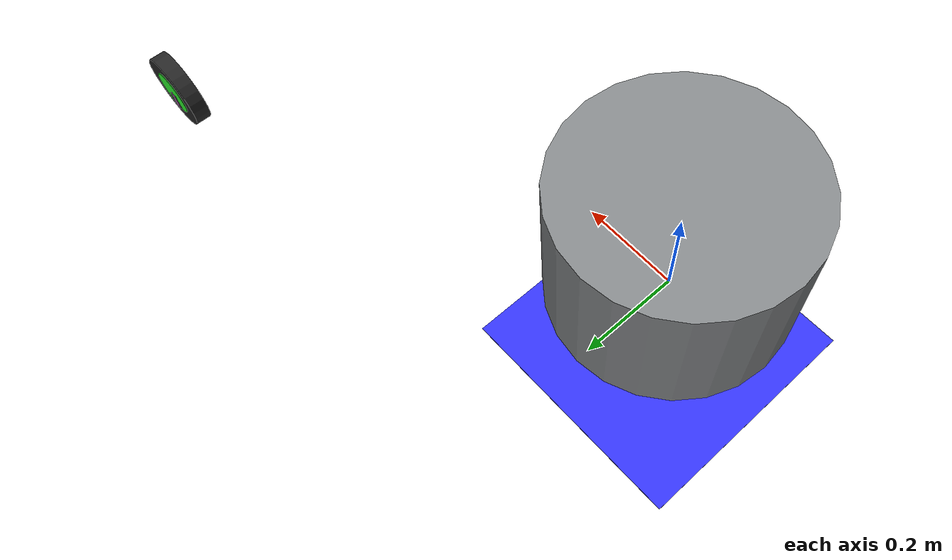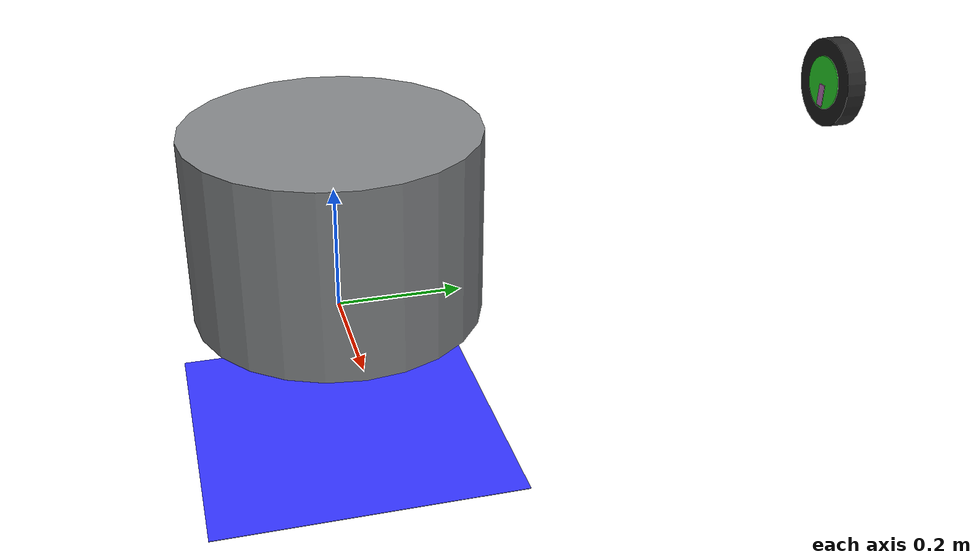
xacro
<?xml version="1.0"?>
<robot xmlns:xacro="http://ros.org/wiki/xacro" name="simple_robot">
  <xacro:property name="radius" value="0.05" />
  <xacro:property name="width" value="0.0254" />
  <xacro:property name="side" value="left" />
  <xacro:property name="axis" value="1" />
  <xacro:property name="pos_x" value="0.5" />
  <xacro:property name="pos_y" value="0.5" />
  <xacro:property name="pos_z" value="0.5" />
  <xacro:property name="mass_kg" value="1.0" />
  <xacro:property name="pi" value="3.14159265359" />

  <!-- base_link-->
  <link name="base_link" />
  <joint name="base_to_chassis" type="fixed">
    <origin xyz="0 0 0" rpy="0 0 0" />
    <child link="chassis" />
    <parent link="base_link" />
  </joint>

  <link name="chassis">
    <collision>
      <geometry>
        <cylinder radius="${0.2286}" length="${0.3}" />
      </geometry>
      <origin rpy="0 0 0" xyz="0 0 ${(0.3/2)}" />
    </collision>
    <visual>
      <geometry>
        <cylinder radius="${0.2286}" length="${0.3}" />
      </geometry>
      <material name="body_aluminum">
        <color rgba="0.516 0.527 0.535 1" />
      </material>
      <origin rpy="0 0 0" xyz="0 0 ${(0.3 / 2)}" />
    </visual>
  </link>

  <!-- Here is the base_footprint -->
  <material name="base_footprint_color">
    <color rgba=".2 .2 1 1"/>
  </material>

  <link name="base_footprint">
    <visual>
      <geometry>
        <box size="0.5 0.5 0.001"/>
      </geometry>
      <pose>0 0 0 0 0 0</pose>
      <material name="base_footprint_color"/>
    </visual>
  </link>

  <joint name="base_footprint_joint" type="fixed">
    <parent link="base_link"/>
    <child link="base_footprint"/>
    <origin xyz="0 0 -0.23" rpy="0 0 0"/>
  </joint>

  <!-- wheel-->
  <link name="${side}_wheel_link">
    <visual name="tire">
      <origin xyz="0 0 0" rpy="0 0 0" />
      <geometry>
        <cylinder radius="${radius}" length="${width - 0.004}" />
      </geometry>
      <material name="left_wheel_link_color">
        <color rgba="0.15 0.15 0.15 1.0"/>
      </material>
    </visual>
    <collision>
      <origin xyz="0 0 0" rpy="0 0 0" />
      <geometry>
        <cylinder radius="${radius}" length="${width - 0.004}" />
      </geometry>
    </collision>
  </link>

  <joint name="${side}_wheel_joint" type="continuous">
    <axis xyz="0 0 ${axis}" />
    <parent link="base_link" />
    <child link="${side}_wheel_link" />
    <origin xyz="${pos_x} ${pos_y} ${pos_z}" rpy="${-axis * pi / 2} 0 0" />
  </joint>

  <!-- Create the wheel hub -->
  <link name="${side}_wheel_hub">
    <origin xyz="0 0 0" rpy="0 0 0" />
    <visual>
      <geometry>
        <cylinder radius="${radius - 0.02}" length="${width - 0.002}" />
      </geometry>
      <material name="${side}_wheel_hub">
        <color rgba="0.2 1.0 0.2 1.0"/>
      </material>
    </visual>
  </link>

  <joint name="${side}_wheel_hub_joint" type="fixed">
    <axis xyz="0 0 ${axis}" />
    <parent link="${side}_wheel_link" />
    <child link="${side}_wheel_hub" />
    <origin xyz="0 0 0" rpy="0 0 0" />
  </joint>

  <!-- Create the wheel marker -->
  <link name="${side}_wheel_marker">
    <origin xyz="0 0 0" rpy="0 0 0" />
    <visual>
      <geometry>
        <box size="0.01 ${(radius / 2)} ${width}" />
      </geometry>
      <material name="${side}_wheel_marker">
        <color rgba="0.86 0.54 0.86 1"/>
      </material>
    </visual>
  </link>

  <joint name="${side}_wheel_marker_joint" type="fixed">
    <parent link="${side}_wheel_hub" />
    <child link="${side}_wheel_marker" />
    <origin xyz="0 ${(radius - 0.02) / 2} 0" rpy="0 0 0" />
  </joint>

</robot>
